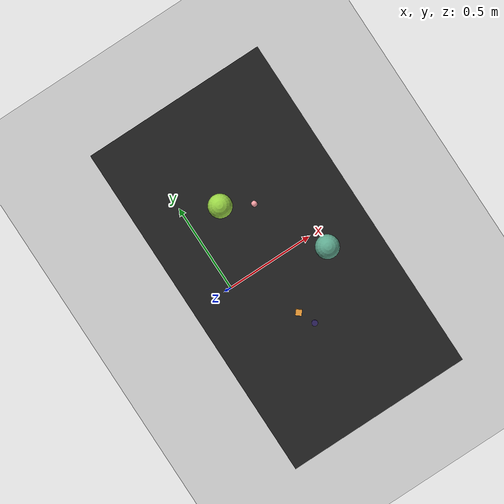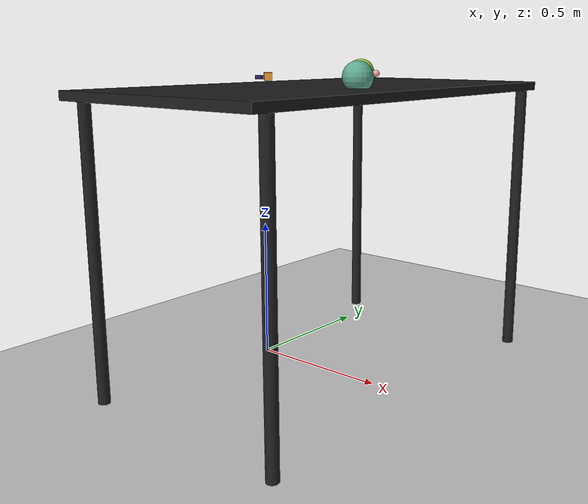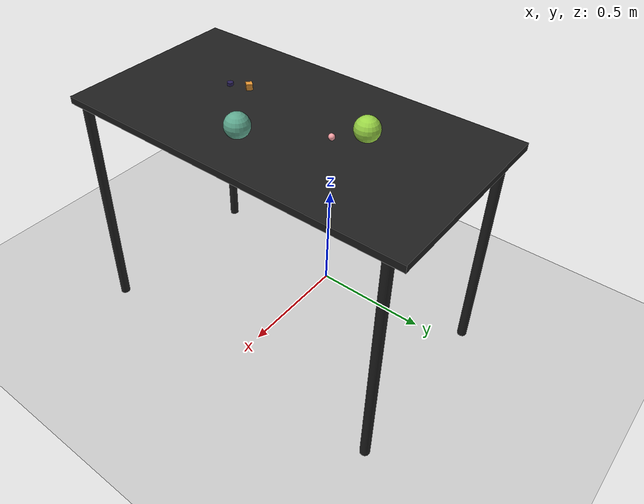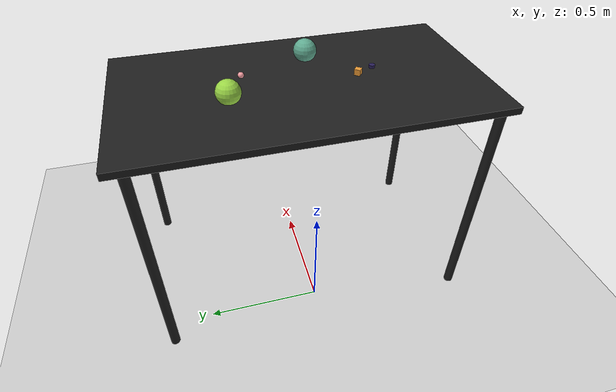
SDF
<?xml version="1.0" ?>
<sdf version="1.6">
  <world name="arm_world">
    <plugin filename="gz-sim-physics-system" name="gz::sim::systems::Physics">
      <engine>
        <filename>libgz-physics-bullet-featherstone-plugin.so</filename>
      </engine>
    </plugin>
    <plugin filename="gz-sim-user-commands-system" name="gz::sim::systems::UserCommands"/>
    <plugin filename="gz-sim-scene-broadcaster-system" name="gz::sim::systems::SceneBroadcaster"/>
    <plugin filename="gz-sim-sensors-system" name="gz::sim::systems::Sensors">
      <render_engine>ogre2</render_engine>
    </plugin>
    <gravity>0.0 0.0 -9.8</gravity>
    <scene>
      <shadows>false</shadows>
    </scene>
    <gui>
      <camera name="user_camera">
        <pose>0.75 -0.75 1.4 0 0.29 2.21</pose>
      </camera>
    </gui>
    <include>
      <uri>https://fuel.gazebosim.org/1.0/OpenRobotics/models/Sun</uri>
    </include>
    <model name="table">
      <static>true</static>
      <include>
        <uri>model://table</uri>
      </include>
      <pose>0.29 0 0 0 0 1.5708</pose>
    </model>
    <model name="ground_plane">
      <static>true</static>
      <link name="link">
        <collision name="collision">
          <geometry>
            <plane>
              <normal>0 0 1</normal>
            </plane>
          </geometry>
          <surface>
            <friction>
              <ode>
                <mu>1.0</mu>
                <mu2>1.0</mu2>
              </ode>
            </friction>
          </surface>
        </collision>
        <visual name="visual">
          <geometry>
            <plane>
              <normal>0 0 1</normal>
              <size>100 100</size>
            </plane>
          </geometry>
          <material>
            <ambient>0.8 0.8 0.8 1</ambient>
            <diffuse>0.8 0.8 0.8 1</diffuse>
            <specular>0.8 0.8 0.8 1</specular>
          </material>
        </visual>
      </link>
    </model>
    <model name="sphere_l_0">
      <pose>0.483 -0.074 1.05 0 0 2.16</pose>
      <link name="sphere_l_0_link">
        <collision name="sphere_l_0_collision">
          <geometry>
            <sphere>
              <radius>0.05</radius>
            </sphere>
          </geometry>
        </collision>
        <visual name="sphere_l_0_visual">
          <geometry>
            <sphere>
              <radius>0.05</radius>
            </sphere>
          </geometry>
          <material>
            <ambient>0.37 0.66 0.56 1</ambient>
            <diffuse>0.37 0.66 0.56 1</diffuse>
          </material>
        </visual>
        <velocity_decay>
          <linear>1</linear>
          <angular>1</angular>
        </velocity_decay>
      </link>
    </model>
    <model name="cylinder_s_1">
      <pose>0.275 -0.299 1.05 0 0 5.94</pose>
      <link name="cylinder_s_1_link">
        <collision name="cylinder_s_1_collision">
          <geometry>
            <cylinder>
              <radius>0.0125</radius>
              <length>0.0125</length>
            </cylinder>
          </geometry>
        </collision>
        <visual name="cylinder_s_1_visual">
          <geometry>
            <cylinder>
              <radius>0.0125</radius>
              <length>0.0125</length>
            </cylinder>
          </geometry>
          <material>
            <ambient>0.16 0.12 0.34 1</ambient>
            <diffuse>0.16 0.12 0.34 1</diffuse>
          </material>
        </visual>
        <velocity_decay>
          <linear>1</linear>
          <angular>1</angular>
        </velocity_decay>
      </link>
    </model>
    <model name="sphere_l_2">
      <pose>0.216 0.294 1.05 0 0 1.55</pose>
      <link name="sphere_l_2_link">
        <collision name="sphere_l_2_collision">
          <geometry>
            <sphere>
              <radius>0.05</radius>
            </sphere>
          </geometry>
        </collision>
        <visual name="sphere_l_2_visual">
          <geometry>
            <sphere>
              <radius>0.05</radius>
            </sphere>
          </geometry>
          <material>
            <ambient>0.6 0.83 0.27 1</ambient>
            <diffuse>0.6 0.83 0.27 1</diffuse>
          </material>
        </visual>
        <velocity_decay>
          <linear>1</linear>
          <angular>1</angular>
        </velocity_decay>
      </link>
    </model>
    <model name="sphere_s_3">
      <pose>0.334 0.227 1.05 0 0 4.28</pose>
      <link name="sphere_s_3_link">
        <collision name="sphere_s_3_collision">
          <geometry>
            <sphere>
              <radius>0.0125</radius>
            </sphere>
          </geometry>
        </collision>
        <visual name="sphere_s_3_visual">
          <geometry>
            <sphere>
              <radius>0.0125</radius>
            </sphere>
          </geometry>
          <material>
            <ambient>0.98 0.63 0.65 1</ambient>
            <diffuse>0.98 0.63 0.65 1</diffuse>
          </material>
        </visual>
        <velocity_decay>
          <linear>1</linear>
          <angular>1</angular>
        </velocity_decay>
      </link>
    </model>
    <model name="cube_s_4">
      <pose>0.245 -0.229 1.05 0 0 2.44</pose>
      <link name="cube_s_4_link">
        <collision name="cube_s_4_collision">
          <geometry>
            <box>
              <size>0.025 0.025 0.025</size>
            </box>
          </geometry>
        </collision>
        <visual name="cube_s_4_visual">
          <geometry>
            <box>
              <size>0.025 0.025 0.025</size>
            </box>
          </geometry>
          <material>
            <ambient>0.9 0.59 0.2 1</ambient>
            <diffuse>0.9 0.59 0.2 1</diffuse>
          </material>
        </visual>
        <velocity_decay>
          <linear>1</linear>
          <angular>1</angular>
        </velocity_decay>
      </link>
    </model>
  </world>
</sdf>

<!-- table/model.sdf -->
<sdf version="1.5">
  <model name="table">
    <static>true</static>
    <link name="link">
      <collision name="surface">
        <pose>0 0 1.0 0 0 0</pose>
        <geometry>
          <box>
            <size>1.5 0.8 0.03</size>
          </box>
        </geometry>
        <surface>
          <friction>
            <ode>
              <mu>0.6</mu>
              <mu2>0.6</mu2>
            </ode>
          </friction>
        </surface>
      </collision>
      <visual name="surface">
        <pose>0 0 1.0 0 0 0</pose>
        <geometry>
          <box>
            <size>1.5 0.8 0.03</size>
          </box>
        </geometry>
        <material>
          <script>
            <uri>file://media/materials/scripts/gazebo.material</uri>
            <name>Gazebo/Black</name>
          </script>
        </material>
      </visual>
      <collision name="front_left_leg">
        <pose>0.68 0.38 0.5 0 0 0</pose>
        <geometry>
          <cylinder>
            <radius>0.02</radius>
            <length>1.0</length>
          </cylinder>
        </geometry>
      </collision>
      <visual name="front_left_leg">
        <pose>0.68 0.38 0.5 0 0 0</pose>
        <geometry>
          <cylinder>
            <radius>0.02</radius>
            <length>1.0</length>
          </cylinder>
        </geometry>
        <material>
          <script>
            <uri>file://media/materials/scripts/gazebo.material</uri>
            <name>Gazebo/Black</name>
          </script>
        </material>
      </visual>
      <collision name="front_right_leg">
        <pose>0.68 -0.38 0.5 0 0 0</pose>
        <geometry>
          <cylinder>
            <radius>0.02</radius>
            <length>1.0</length>
          </cylinder>
        </geometry>
      </collision>
      <visual name="front_right_leg">
        <pose>0.68 -0.38 0.5 0 0 0</pose>
        <geometry>
          <cylinder>
            <radius>0.02</radius>
            <length>1.0</length>
          </cylinder>
        </geometry>
        <material>
          <script>
            <uri>file://media/materials/scripts/gazebo.material</uri>
            <name>Gazebo/Black</name>
          </script>
        </material>
      </visual>
      <collision name="back_right_leg">
        <pose>-0.68 -0.38 0.5 0 0 0</pose>
        <geometry>
          <cylinder>
            <radius>0.02</radius>
            <length>1.0</length>
          </cylinder>
        </geometry>
      </collision>
      <visual name="back_right_leg">
        <pose>-0.68 -0.38 0.5 0 0 0</pose>
        <geometry>
          <cylinder>
            <radius>0.02</radius>
            <length>1.0</length>
          </cylinder>
        </geometry>
        <material>
          <script>
            <uri>file://media/materials/scripts/gazebo.material</uri>
            <name>Gazebo/Black</name>
          </script>
        </material>
      </visual>
      <collision name="back_left_leg">
        <pose>-0.68 0.38 0.5 0 0 0</pose>
        <geometry>
          <cylinder>
            <radius>0.02</radius>
            <length>1.0</length>
          </cylinder>
        </geometry>
      </collision>
      <visual name="back_left_leg">
        <pose>-0.68 0.38 0.5 0 0 0</pose>
        <geometry>
          <cylinder>
            <radius>0.02</radius>
            <length>1.0</length>
          </cylinder>
        </geometry>
        <material>
          <script>
            <uri>file://media/materials/scripts/gazebo.material</uri>
            <name>Gazebo/Black</name>
          </script>
        </material>
      </visual>
    </link>
  </model>
</sdf>
